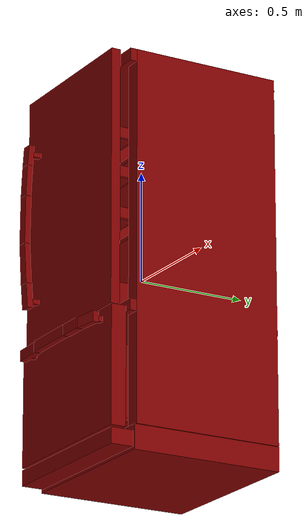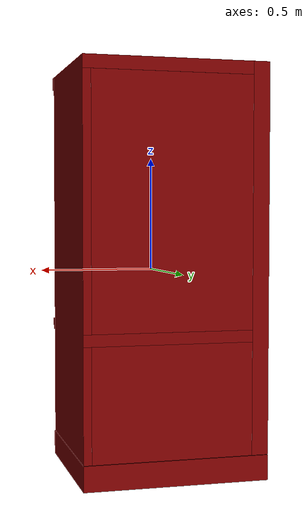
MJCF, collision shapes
<mujoco model="model">
  <compiler angle="radian"/>
  <asset>
    <mesh file="visuals/Body001.obj" name="Body001_vis"/>
    <mesh file="visuals/Body001_Clear.obj" name="Body001_Clear_vis"/>
    <mesh file="visuals/Door001.obj" name="Door001_vis"/>
    <mesh file="visuals/Door001_Clear.obj" name="Door001_Clear_vis"/>
    <mesh file="visuals/Drawer001.obj" name="Drawer001_vis"/>
    <texture file="visuals/T_BC001.png" name="Body001_material" type="2d"/>
    <material name="Body001_material" rgba="1 1 1 1.0" texture="Body001_material" shininess="0.4472135901451111" specular="0.3103448502657381"/>
    <texture file="visuals/T_BC001.png" name="Body001_Clear_material" type="2d"/>
    <material name="Body001_Clear_material" rgba="1 1 1 0.8030303120613098" texture="Body001_Clear_material" shininess="0.4472135901451111" specular="0.3103448502657381"/>
    <texture file="visuals/T_BC001.png" name="Door001_material" type="2d"/>
    <material name="Door001_material" rgba="1 1 1 1.0" texture="Door001_material" shininess="0.4472135901451111" specular="0.3103448502657381"/>
    <texture file="visuals/T_BC001.png" name="Door001_Clear_material" type="2d"/>
    <material name="Door001_Clear_material" rgba="1 1 1 0.8030303120613098" texture="Door001_Clear_material" shininess="0.4472135901451111" specular="0.3103448502657381"/>
    <texture file="visuals/T_BC001.png" name="Drawer001_material" type="2d"/>
    <material name="Drawer001_material" rgba="1 1 1 1.0" texture="Drawer001_material" shininess="0.4472135901451111" specular="0.3103448502657381"/>
  </asset>
  <default>
    <default class="visual">
      <geom conaffinity="0" contype="0" group="1" type="mesh"/>
    </default>
    <default class="collision">
      <geom group="0" rgba="0.5 0 0 0.5"/>
    </default>
    <default class="spawn">
      <geom group="0" rgba="1 1 1 0.5" contype="0" conaffinity="0"/>
      <site group="0" rgba="1 1 1 0.5"/>
    </default>
    <default class="region">
      <geom group="1" conaffinity="0" contype="0" rgba="0 1 0 0"/>
    </default>
  </default>
  <worldbody>
    <body>
      <body name="object">
        <geom mesh="Body001_vis" type="mesh" solimp="0.998 0.998 0.001" solref="0.001 1" density="100" friction="0.95 0.3 0.1" class="visual" material="Body001_material"/>
        <geom class="collision" type="box" pos="0.000000 0.086781 -0.833109" size="0.40092727541923523 0.3497343361377716 0.054656922817230225" quat="1.0 0.0 0.0 0.0"/>
        <geom class="collision" type="box" pos="0.000000 -0.304399 -0.838531" size="0.38699254393577576 0.060260191559791565 0.035069309175014496" quat="1.0 0.0 0.0 0.0"/>
        <geom class="collision" type="box" pos="-0.364790 0.091750 0.055717" size="0.036139506846666336 0.3455435037612915 0.8320994973182678" quat="1.0 0.0 0.0 0.0"/>
        <geom class="collision" type="box" pos="0.365912 0.091377 0.055718" size="0.03501766175031662 0.3451694846153259 0.8320972323417664" quat="1.0 0.0 0.0 0.0"/>
        <geom class="collision" type="box" pos="-0.002550 0.408294 0.055729" size="0.36844295263290405 0.02850440703332424 0.8320147395133972" quat="1.0 0.0 0.0 0.0"/>
        <geom class="collision" type="box" pos="0.000000 0.075993 0.859838" size="0.40092727541923523 0.36127957701683044 0.02792932093143463" quat="1.0 0.0 0.0 0.0"/>
        <geom class="collision" type="box" pos="0.000000 0.075993 -0.265413" size="0.40092727541923523 0.36127957701683044 0.025407705456018448" quat="1.0 0.0 0.0 0.0"/>
        <body name="Body001_Clear">
          <geom mesh="Body001_Clear_vis" type="mesh" solimp="0.998 0.998 0.001" solref="0.001 1" density="100" friction="0.95 0.3 0.1" class="visual" material="Body001_Clear_material"/>
          <geom class="collision" type="box" pos="0.000000 0.116643 0.475078" size="0.34398406744003296 0.2810853123664856 0.009531131945550442" quat="1.0 0.0 0.0 0.0"/>
          <geom class="collision" type="box" pos="0.000000 0.116643 0.121482" size="0.34398847818374634 0.2810927927494049 0.00953137781471014" quat="1.0 0.0 0.0 0.0"/>
        </body>
        <body name="Door001">
          <joint axis="0.0 0.0 1.0" pos="0.360238 -0.324311 0.290680" limited="true" name="Door001_joint" range="0.0 1.5707963267948966" type="hinge" damping="1" frictionloss="1" armature=".01" stiffness="0.05"/>
          <geom mesh="Door001_vis" type="mesh" solimp="0.998 0.998 0.001" solref="0.001 1" density="100" friction="0.95 0.3 0.1" class="visual" material="Door001_material"/>
          <geom class="collision" type="box" pos="-0.010249 -0.333898 0.313506" size="0.37174180150032043 0.021175889298319817 0.5742824077606201" quat="1.0 0.0 0.0 0.0"/>
          <geom class="collision" type="box" pos="-0.277525 -0.413200 0.591473" size="0.024293996393680573 0.01296269427984953 0.0471712201833725" quat="0.9993683695793152 -0.03553691506385803 7.924247166012033e-18 2.5940340388810333e-20"/>
          <geom class="collision" type="box" pos="-0.277715 -0.380442 0.604635" size="0.012112154625356197 0.022646870464086533 0.010416803881525993" quat="1.0 0.0 0.0 0.0"/>
          <geom class="collision" type="box" pos="-0.277525 -0.419939 0.473345" size="0.024293996393680573 0.012967360205948353 0.07193995267152786" quat="0.9997038245201111 -0.02433730475604534 5.4343905088355674e-18 1.9865420957057195e-20"/>
          <geom class="collision" type="box" pos="-0.277525 -0.424466 0.290487" size="0.024293996393680573 0.012979773804545403 0.11050014942884445" quat="0.9999790191650391 -0.0064763533882796764 1.451698045922654e-18 3.1794554866099182e-21"/>
          <geom class="collision" type="box" pos="-0.277525 -0.421041 0.089774" size="0.024293996393680573 0.012981601059436798 0.09150311350822449" quat="0.9996955990791321 0.02467193827033043 -5.471789412280621e-18 8.734325497898688e-22"/>
          <geom class="collision" type="box" pos="-0.277525 -0.411089 -0.054032" size="0.024294327944517136 0.014170503243803978 0.05627668648958206" quat="0.9993956685066223 0.03475973755121231 -7.718212191856713e-18 -1.586466037753559e-24"/>
          <geom class="collision" type="box" pos="-0.277715 -0.380442 -0.076338" size="0.012112154625356197 0.02264673449099064 0.010415987111628056" quat="1.0 0.0 0.0 0.0"/>
          <body name="Door001_Clear">
            <geom mesh="Door001_Clear_vis" type="mesh" solimp="0.998 0.998 0.001" solref="0.001 1" density="100" friction="0.95 0.3 0.1" class="visual" material="Door001_Clear_material"/>
            <geom class="collision" type="box" pos="0.003462 -0.252076 0.154592" size="0.27945879101753235 0.05489032715559006 0.002754987683147192" quat="1.0 0.0 0.0 0.0"/>
            <geom class="collision" type="box" pos="0.003462 -0.197180 0.179067" size="0.27945879101753235 0.028109341859817505 0.0033651823177933693" quat="0.7436845898628235 0.6685306429862976 -1.3533055986193797e-16 2.0975043785633737e-17"/>
            <geom class="collision" type="box" pos="0.003462 -0.301982 0.179933" size="0.27945879101753235 0.003370946738868952 0.027542633935809135" quat="1.0 0.0 0.0 0.0"/>
            <geom class="collision" type="box" pos="-0.273522 -0.246477 0.179933" size="0.0035252647940069437 0.05767184868454933 0.02754155918955803" quat="1.0 0.0 0.0 0.0"/>
            <geom class="collision" type="box" pos="0.277003 -0.246477 0.179933" size="0.0035252715460956097 0.05767184868454933 0.02754160389304161" quat="1.0 0.0 0.0 0.0"/>
            <geom class="collision" type="box" pos="0.002208 -0.252076 0.519579" size="0.27945879101753235 0.05489068105816841 0.0027550053782761097" quat="1.0 0.0 0.0 0.0"/>
            <geom class="collision" type="box" pos="0.002208 -0.197180 0.544055" size="0.27945879101753235 0.028109341859817505 0.0033651823177933693" quat="0.7436845898628235 0.6685306429862976 -1.3533055986193797e-16 2.0975043785633737e-17"/>
            <geom class="collision" type="box" pos="0.002208 -0.301982 0.544920" size="0.27945879101753235 0.003370903665199876 0.027542633935809135" quat="1.0 0.0 0.0 0.0"/>
            <geom class="collision" type="box" pos="-0.274777 -0.246477 0.544920" size="0.003525292035192251 0.05767184868454933 0.027541741728782654" quat="1.0 0.0 0.0 0.0"/>
            <geom class="collision" type="box" pos="0.275748 -0.246477 0.544920" size="0.003525299020111561 0.05767184868454933 0.027541786432266235" quat="1.0 0.0 0.0 0.0"/>
            <geom class="collision" type="box" pos="0.004654 -0.256731 0.341419" size="0.27945879101753235 0.05489103123545647 0.0027550230734050274" quat="1.0 0.0 0.0 0.0"/>
            <geom class="collision" type="box" pos="0.004654 -0.201834 0.365894" size="0.27945879101753235 0.028109341859817505 0.0033651823177933693" quat="0.7436845898628235 0.6685306429862976 -1.3533055986193797e-16 2.0975043785633737e-17"/>
            <geom class="collision" type="box" pos="0.004654 -0.306637 0.366759" size="0.27945879101753235 0.0033708605915308 0.027542633935809135" quat="1.0 0.0 0.0 0.0"/>
            <geom class="collision" type="box" pos="-0.272330 -0.251132 0.366759" size="0.0035253195092082024 0.05767184868454933 0.02754192240536213" quat="1.0 0.0 0.0 0.0"/>
            <geom class="collision" type="box" pos="0.278195 -0.251132 0.366759" size="0.0035253262612968683 0.05767184868454933 0.02754196710884571" quat="1.0 0.0 0.0 0.0"/>
          </body>
        </body>
        <body name="Drawer001">
          <joint axis="0.0 -1.0 0.0" pos="0.001333 -0.047499 -0.535387" limited="true" name="Drawer001_joint" range="0.0 0.5" type="slide" damping="1" frictionloss="1" armature=".01" stiffness="0.05"/>
          <geom mesh="Drawer001_vis" type="mesh" solimp="0.998 0.998 0.001" solref="0.001 1" density="100" friction="0.95 0.3 0.1" class="visual" material="Drawer001_material"/>
          <geom class="collision" type="box" pos="-0.006600 -0.327761 -0.530112" size="0.3870447278022766 0.03468457981944084 0.2612365782260895" quat="1.0 0.0 0.0 0.0"/>
          <geom class="collision" type="box" pos="0.000410 0.006151 -0.734210" size="0.30270737409591675 0.3254165053367615 0.008594145067036152" quat="1.0 0.0 0.0 0.0"/>
          <geom class="collision" type="box" pos="0.000410 0.324790 -0.569820" size="0.30271774530410767 0.007609356660395861 0.16157948970794678" quat="1.0 0.0 0.0 0.0"/>
          <geom class="collision" type="box" pos="-0.291397 0.003575 -0.569820" size="0.007958710193634033 0.33163711428642273 0.1615736484527588" quat="1.0 0.0 0.0 0.0"/>
          <geom class="collision" type="box" pos="0.290423 0.003575 -0.569820" size="0.007958710193634033 0.33163732290267944 0.16157396137714386" quat="1.0 0.0 0.0 0.0"/>
          <geom class="collision" type="box" pos="0.293730 -0.380442 -0.317777" size="0.012112154625356197 0.022646723315119743 0.012438095174729824" quat="1.0 0.0 0.0 0.0"/>
          <geom class="collision" type="box" pos="-0.282326 -0.380442 -0.318699" size="0.012112154625356197 0.022646641358733177 0.013016744516789913" quat="1.0 0.0 0.0 0.0"/>
          <geom class="collision" type="box" pos="0.266299 -0.410233 -0.317788" size="0.05823799967765808 0.014262652024626732 0.02385825291275978" quat="0.9989623427391052 0.0 0.0 0.045544348657131195"/>
          <geom class="collision" type="box" pos="0.150407 -0.418027 -0.317788" size="0.05877559259533882 0.016647132113575935 0.02385825291275978" quat="1.0 0.0 0.0 0.0"/>
          <geom class="collision" type="box" pos="-0.037950 -0.419233 -0.317788" size="0.13036563992500305 0.015036256983876228 0.02385825291275978" quat="0.007181896828114986 0.0 0.0 0.9999741911888123"/>
          <geom class="collision" type="box" pos="-0.241694 -0.409402 -0.317788" size="0.07295716553926468 0.015036256983876228 0.02385825291275978" quat="0.021878836676478386 0.0 0.0 0.999760627746582"/>
        </body>
        <geom class="region" name="reg_main" type="box" pos="0.0 0.03633249999999999 0.0" size="0.400927 0.4009935 0.887767"/>
      </body>
    </body>
  </worldbody>
  <actuator>
    <motor name="Door001_joint_actuator" joint="Door001_joint" gear="50"/>
    <motor name="Drawer001_joint_actuator" joint="Drawer001_joint" gear="50"/>
  </actuator>
</mujoco>
